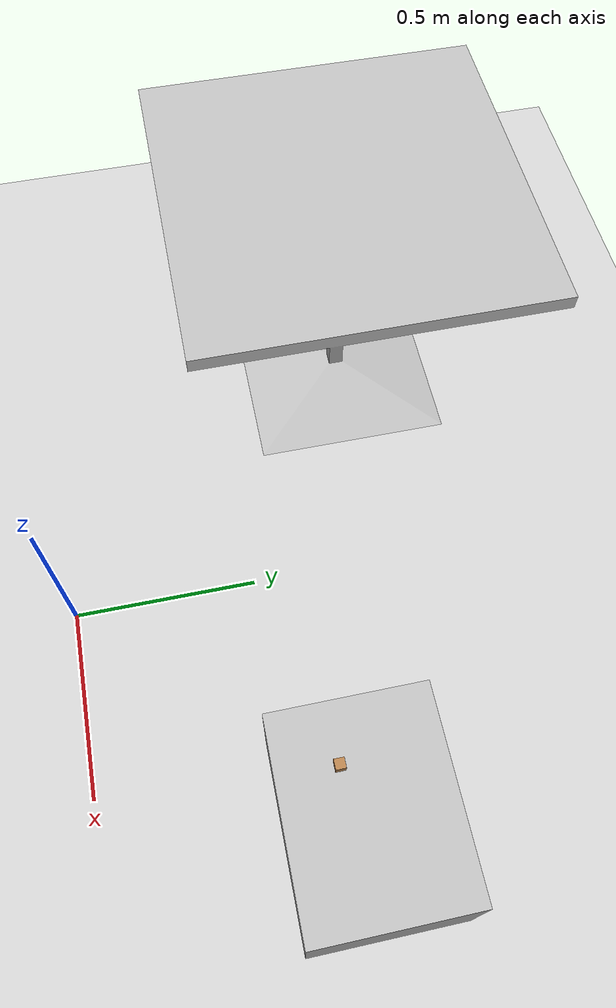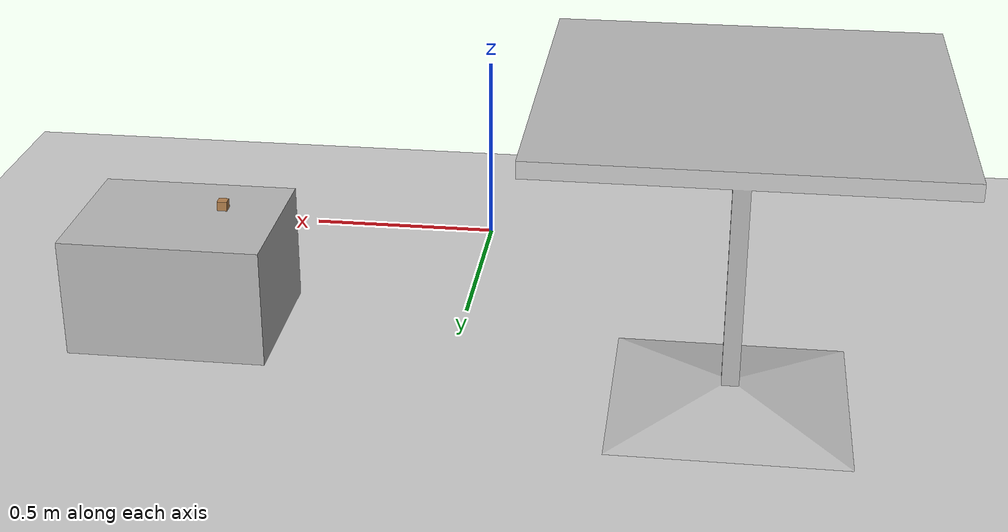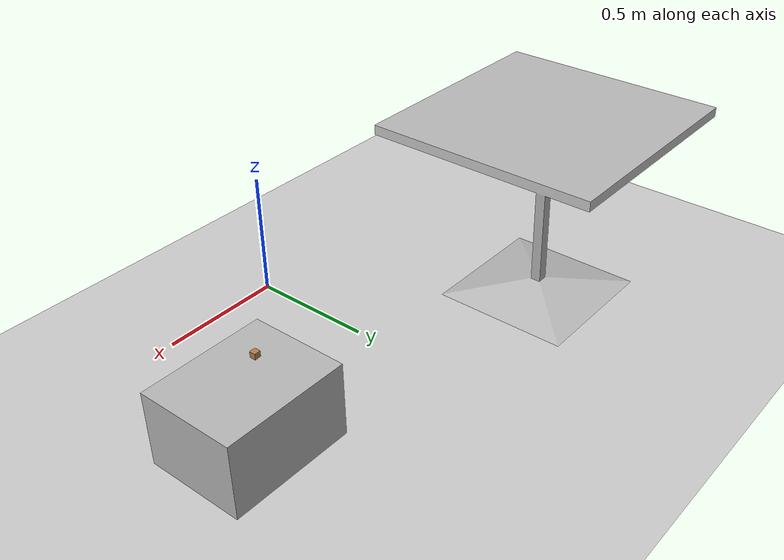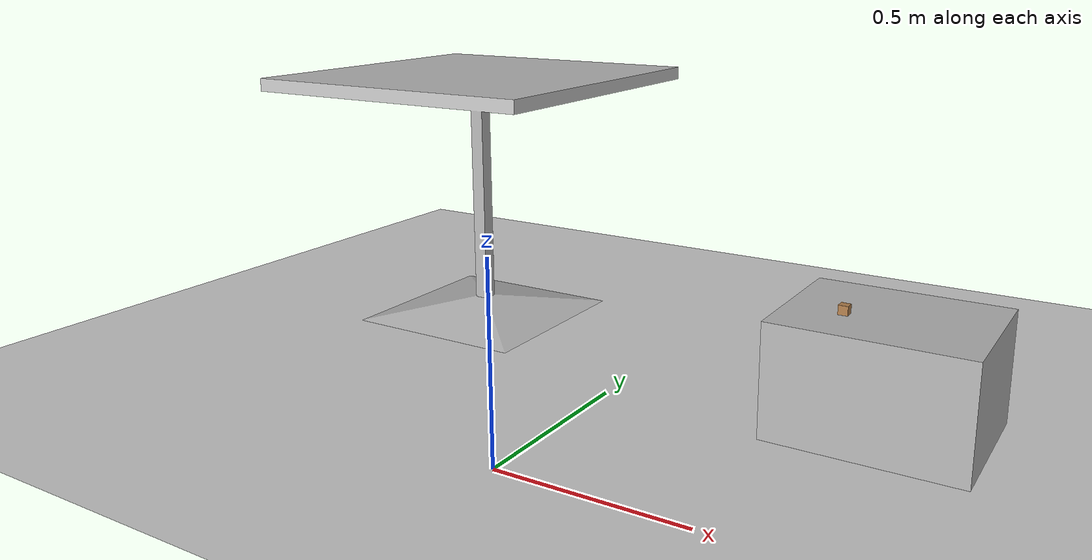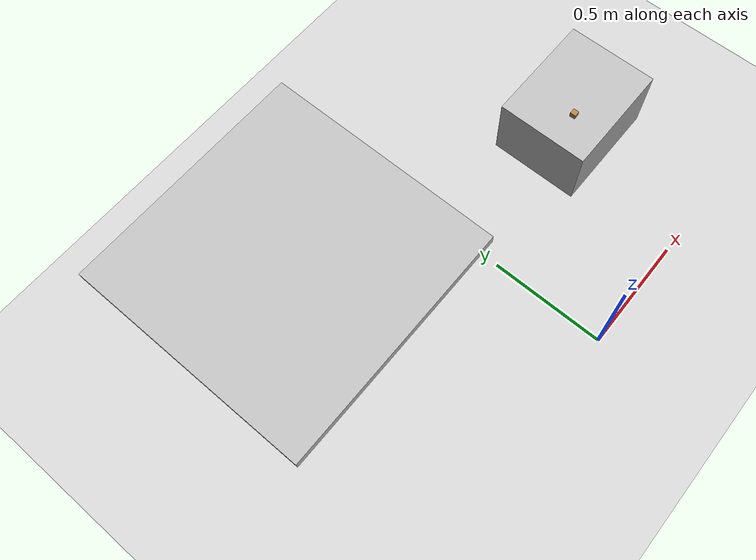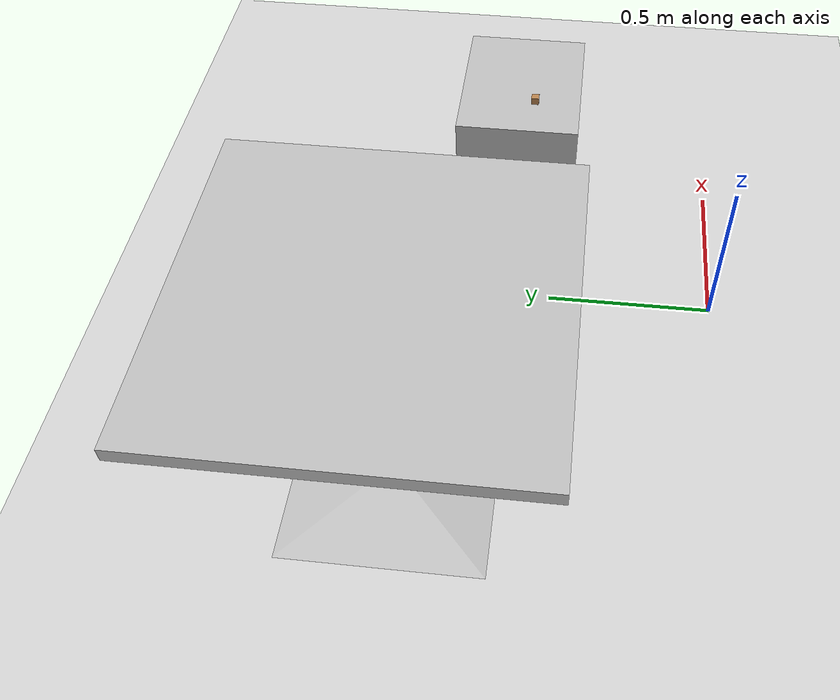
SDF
<sdf version="1.7">
 <world name="default">
  <light name="sun" type="directional">
   <pose>0 0 10 0 -0 0</pose>
   <diffuse>0.8 0.8 0.8 1</diffuse>
   <specular>0.2 0.2 0.2 1</specular>
   <attenuation>
    <range>1000</range>
    <constant>0.9</constant>
    <linear>0.01</linear>
    <quadratic>0.001</quadratic>
   </attenuation>
   <direction>-0.5 0.1 -0.9</direction>
   <spot><inner_angle>0</inner_angle><outer_angle>0</outer_angle><falloff>0</falloff></spot>
  </light>
  <model name="ground_plane">
   <static>1</static>
   <link name="link">
    <collision name="collision">
     <geometry><plane><normal>0 0 1</normal><size>100 100</size></plane></geometry>
     <surface><friction><ode><mu>100</mu><mu2>50</mu2></ode></friction></surface>
    </collision>
    <visual name="visual">
     <cast_shadows>0</cast_shadows>
     <geometry><plane><normal>0 0 1</normal><size>100 100</size></plane></geometry>
     <material>
      <script><uri>file://media/materials/scripts/gazebo.material</uri><name>Gazebo/Grey</name></script>
     </material>
    </visual>
   </link>
  </model>
  <gravity>0 0 -9.8</gravity>
  <magnetic_field>6e-06 2.3e-05 -4.2e-05</magnetic_field>
  <atmosphere type="adiabatic"/>
  <physics type="ode">
   <max_step_size>0.001</max_step_size>
   <real_time_factor>1</real_time_factor>
   <real_time_update_rate>1000</real_time_update_rate>
  </physics>
  <scene><ambient>0.4 0.4 0.4 1</ambient><background>0.7 0.7 0.7 1</background><shadows>1</shadows></scene>
  <spherical_coordinates>
   <surface_model>EARTH_WGS84</surface_model>
   <latitude_deg>0</latitude_deg>
   <longitude_deg>0</longitude_deg>
   <elevation>0</elevation>
   <heading_deg>0</heading_deg>
  </spherical_coordinates>
  <model name="cardboard_box">
   <pose>0.700007 0.649997 0.149 0 -0 0</pose>
   <link name="link">
    <inertial>
     <mass>2</mass>
     <inertia>
      <ixx>0.0416667</ixx>
      <ixy>0</ixy>
      <ixz>0</ixz>
      <iyy>0.0566667</iyy>
      <iyz>0</iyz>
      <izz>0.0683333</izz>
     </inertia>
    </inertial>
    <collision name="collision">
     <geometry><box><size>0.5 0.4 0.3</size></box></geometry>
     <surface>
      <friction><ode><mu>1</mu><mu2>1</mu2></ode></friction>
      <contact><ode><kp>1e+07</kp><kd>1</kd><min_depth>0.001</min_depth><max_vel>0.1</max_vel></ode></contact>
     </surface>
    </collision>
    <visual name="visual">
     <pose>0 0 -0.15 0 -0 0</pose>
     <geometry>
      <mesh><uri>model://cardboard_box/meshes/cardboard_box.dae</uri><scale>1.25932 1.00745 0.755591</scale></mesh>
     </geometry>
    </visual>
   </link>
  </model>
  <model name="wood_cube_2_5cm">
   <link name="link">
    <pose>0 0 0.0125 0 -0 0</pose>
    <inertial>
     <mass>0.0073</mass>
     <inertia>
      <ixx>7.60417e-07</ixx>
      <ixy>0</ixy>
      <ixz>0</ixz>
      <iyy>7.60417e-07</iyy>
      <iyz>0</iyz>
      <izz>7.60417e-07</izz>
     </inertia>
    </inertial>
    <collision name="collision">
     <geometry><box><size>0.025 0.025 0.025</size></box></geometry>
     <surface>
      <contact>
       <poissons_ratio>0.347</poissons_ratio>
       <elastic_modulus>8.8e+09</elastic_modulus>
       <ode><kp>100000</kp><kd>100</kd><max_vel>100</max_vel><min_depth>0.001</min_depth></ode>
      </contact>
      <friction>
       <torsional>
        <coefficient>1</coefficient>
        <use_patch_radius>0</use_patch_radius>
        <surface_radius>0.01</surface_radius>
       </torsional>
      </friction>
     </surface>
    </collision>
    <visual name="visual">
     <geometry><box><size>0.025 0.025 0.025</size></box></geometry>
     <material>
      <script><uri>file://media/materials/scripts/gazebo.material</uri><name>Gazebo/Wood</name></script>
     </material>
    </visual>
   </link>
   <pose>0.600001 0.600519 0.298069 -0.001481 0.000129 0</pose>
  </model>
  <model name="cafe_table">
   <static>1</static>
   <link name="link">
    <collision name="surface">
     <pose>0 0 0.755 0 -0 0</pose>
     <geometry><box><size>0.913 0.913 0.04</size></box></geometry>
    </collision>
    <collision name="column">
     <pose>0 0 0.37 0 -0 0</pose>
     <geometry><box><size>0.042 0.042 0.74</size></box></geometry>
    </collision>
    <collision name="base">
     <pose>0 0 0.02 0 -0 0</pose>
     <geometry><box><size>0.56 0.56 0.04</size></box></geometry>
    </collision>
    <visual name="visual">
     <geometry><mesh><uri>model://cafe_table/meshes/cafe_table.dae</uri></mesh></geometry>
    </visual>
   </link>
   <pose>-0.680782 0.877556 0 0 -0 0</pose>
  </model>
 </world>
</sdf>
